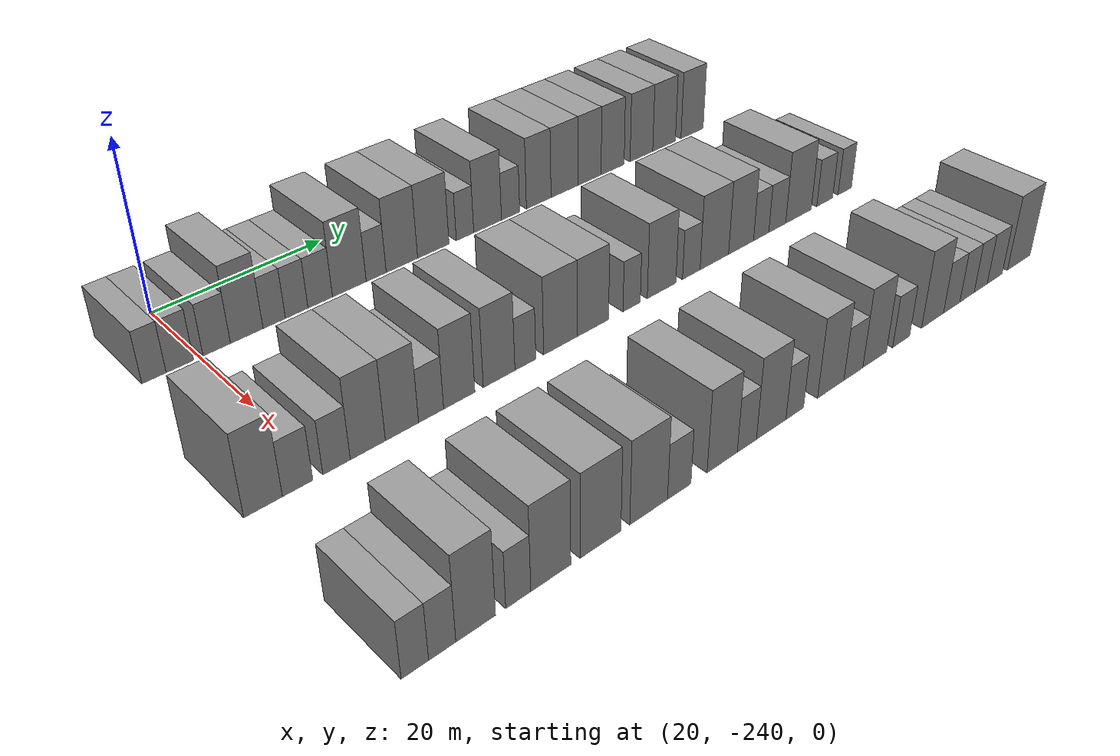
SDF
<sdf version="1.6">
 <world name="default">
  <model name="building_1">
   <static>1</static>
   <pose>25.0000 -244.7638 0 0.000000 0.000000 0.000000</pose>
   <link name="link">
    <pose>0 0 3.00 0 0 0</pose>
    <collision name="collision"><geometry><box><size>10.0000 2.4723 6.0000</size></box></geometry></collision>
    <visual name="visual">
     <cast_shadows>0</cast_shadows>
     <geometry><box><size>10.0000 2.4723 6.0000</size></box></geometry>
     <material>
      <script>
       <uri>model://grey_wall/materials/scripts</uri>
       <uri>model://grey_wall/materials/textures</uri>
       <name>vrc/grey_wall</name>
      </script>
     </material>
    </visual>
   </link>
  </model>
  <model name="building_2">
   <static>1</static>
   <pose>25.0000 -242.0976 0 0.000000 0.000000 0.000000</pose>
   <link name="link">
    <pose>0 0 3.00 0 0 0</pose>
    <collision name="collision"><geometry><box><size>10.0000 2.8600 6.0000</size></box></geometry></collision>
    <visual name="visual">
     <cast_shadows>0</cast_shadows>
     <geometry><box><size>10.0000 2.8600 6.0000</size></box></geometry>
     <material>
      <script>
       <uri>model://grey_wall/materials/scripts</uri>
       <uri>model://grey_wall/materials/textures</uri>
       <name>vrc/grey_wall</name>
      </script>
     </material>
    </visual>
   </link>
  </model>
  <model name="building_3">
   <static>1</static>
   <pose>25.0000 -238.1862 0 0.000000 0.000000 0.000000</pose>
   <link name="link">
    <pose>0 0 3.00 0 0 0</pose>
    <collision name="collision"><geometry><box><size>10.0000 2.9628 6.0000</size></box></geometry></collision>
    <visual name="visual">
     <cast_shadows>0</cast_shadows>
     <geometry><box><size>10.0000 2.9628 6.0000</size></box></geometry>
     <material>
      <script>
       <uri>model://grey_wall/materials/scripts</uri>
       <uri>model://grey_wall/materials/textures</uri>
       <name>vrc/grey_wall</name>
      </script>
     </material>
    </visual>
   </link>
  </model>
  <model name="building_4">
   <static>1</static>
   <pose>25.0000 -234.8908 0 0.000000 0.000000 0.000000</pose>
   <link name="link">
    <pose>0 0 4.50 0 0 0</pose>
    <collision name="collision"><geometry><box><size>10.0000 3.6281 9.0000</size></box></geometry></collision>
    <visual name="visual">
     <cast_shadows>0</cast_shadows>
     <geometry><box><size>10.0000 3.6281 9.0000</size></box></geometry>
     <material>
      <script>
       <uri>model://grey_wall/materials/scripts</uri>
       <uri>model://grey_wall/materials/textures</uri>
       <name>vrc/grey_wall</name>
      </script>
     </material>
    </visual>
   </link>
  </model>
  <model name="building_5">
   <static>1</static>
   <pose>25.0000 -231.7991 0 0.000000 0.000000 0.000000</pose>
   <link name="link">
    <pose>0 0 3.00 0 0 0</pose>
    <collision name="collision"><geometry><box><size>10.0000 2.5554 6.0000</size></box></geometry></collision>
    <visual name="visual">
     <cast_shadows>0</cast_shadows>
     <geometry><box><size>10.0000 2.5554 6.0000</size></box></geometry>
     <material>
      <script>
       <uri>model://grey_wall/materials/scripts</uri>
       <uri>model://grey_wall/materials/textures</uri>
       <name>vrc/grey_wall</name>
      </script>
     </material>
    </visual>
   </link>
  </model>
  <model name="building_6">
   <static>1</static>
   <pose>25.0000 -229.2034 0 0.000000 0.000000 0.000000</pose>
   <link name="link">
    <pose>0 0 3.00 0 0 0</pose>
    <collision name="collision"><geometry><box><size>10.0000 2.6359 6.0000</size></box></geometry></collision>
    <visual name="visual">
     <cast_shadows>0</cast_shadows>
     <geometry><box><size>10.0000 2.6359 6.0000</size></box></geometry>
     <material>
      <script>
       <uri>model://grey_wall/materials/scripts</uri>
       <uri>model://grey_wall/materials/textures</uri>
       <name>vrc/grey_wall</name>
      </script>
     </material>
    </visual>
   </link>
  </model>
  <model name="building_7">
   <static>1</static>
   <pose>25.0000 -226.4187 0 0.000000 0.000000 0.000000</pose>
   <link name="link">
    <pose>0 0 3.00 0 0 0</pose>
    <collision name="collision"><geometry><box><size>10.0000 2.9334 6.0000</size></box></geometry></collision>
    <visual name="visual">
     <cast_shadows>0</cast_shadows>
     <geometry><box><size>10.0000 2.9334 6.0000</size></box></geometry>
     <material>
      <script>
       <uri>model://grey_wall/materials/scripts</uri>
       <uri>model://grey_wall/materials/textures</uri>
       <name>vrc/grey_wall</name>
      </script>
     </material>
    </visual>
   </link>
  </model>
  <model name="building_8">
   <static>1</static>
   <pose>25.0000 -222.8721 0 0.000000 0.000000 0.000000</pose>
   <link name="link">
    <pose>0 0 4.50 0 0 0</pose>
    <collision name="collision"><geometry><box><size>10.0000 4.1597 9.0000</size></box></geometry></collision>
    <visual name="visual">
     <cast_shadows>0</cast_shadows>
     <geometry><box><size>10.0000 4.1597 9.0000</size></box></geometry>
     <material>
      <script>
       <uri>model://grey_wall/materials/scripts</uri>
       <uri>model://grey_wall/materials/textures</uri>
       <name>vrc/grey_wall</name>
      </script>
     </material>
    </visual>
   </link>
  </model>
  <model name="building_9">
   <static>1</static>
   <pose>25.0000 -219.5267 0 0.000000 0.000000 0.000000</pose>
   <link name="link">
    <pose>0 0 3.00 0 0 0</pose>
    <collision name="collision"><geometry><box><size>10.0000 2.5312 6.0000</size></box></geometry></collision>
    <visual name="visual">
     <cast_shadows>0</cast_shadows>
     <geometry><box><size>10.0000 2.5312 6.0000</size></box></geometry>
     <material>
      <script>
       <uri>model://grey_wall/materials/scripts</uri>
       <uri>model://grey_wall/materials/textures</uri>
       <name>vrc/grey_wall</name>
      </script>
     </material>
    </visual>
   </link>
  </model>
  <model name="building_10">
   <static>1</static>
   <pose>25.0000 -216.2148 0 0.000000 0.000000 0.000000</pose>
   <link name="link">
    <pose>0 0 4.50 0 0 0</pose>
    <collision name="collision"><geometry><box><size>10.0000 4.0925 9.0000</size></box></geometry></collision>
    <visual name="visual">
     <cast_shadows>0</cast_shadows>
     <geometry><box><size>10.0000 4.0925 9.0000</size></box></geometry>
     <material>
      <script>
       <uri>model://grey_wall/materials/scripts</uri>
       <uri>model://grey_wall/materials/textures</uri>
       <name>vrc/grey_wall</name>
      </script>
     </material>
    </visual>
   </link>
  </model>
  <model name="building_11">
   <static>1</static>
   <pose>25.0000 -212.0527 0 0.000000 0.000000 0.000000</pose>
   <link name="link">
    <pose>0 0 4.50 0 0 0</pose>
    <collision name="collision"><geometry><box><size>10.0000 4.2318 9.0000</size></box></geometry></collision>
    <visual name="visual">
     <cast_shadows>0</cast_shadows>
     <geometry><box><size>10.0000 4.2318 9.0000</size></box></geometry>
     <material>
      <script>
       <uri>model://grey_wall/materials/scripts</uri>
       <uri>model://grey_wall/materials/textures</uri>
       <name>vrc/grey_wall</name>
      </script>
     </material>
    </visual>
   </link>
  </model>
  <model name="building_12">
   <static>1</static>
   <pose>25.0000 -207.7219 0 0.000000 0.000000 0.000000</pose>
   <link name="link">
    <pose>0 0 3.00 0 0 0</pose>
    <collision name="collision"><geometry><box><size>10.0000 2.4299 6.0000</size></box></geometry></collision>
    <visual name="visual">
     <cast_shadows>0</cast_shadows>
     <geometry><box><size>10.0000 2.4299 6.0000</size></box></geometry>
     <material>
      <script>
       <uri>model://grey_wall/materials/scripts</uri>
       <uri>model://grey_wall/materials/textures</uri>
       <name>vrc/grey_wall</name>
      </script>
     </material>
    </visual>
   </link>
  </model>
  <model name="building_13">
   <static>1</static>
   <pose>25.0000 -204.5237 0 0.000000 0.000000 0.000000</pose>
   <link name="link">
    <pose>0 0 4.50 0 0 0</pose>
    <collision name="collision"><geometry><box><size>10.0000 3.9663 9.0000</size></box></geometry></collision>
    <visual name="visual">
     <cast_shadows>0</cast_shadows>
     <geometry><box><size>10.0000 3.9663 9.0000</size></box></geometry>
     <material>
      <script>
       <uri>model://grey_wall/materials/scripts</uri>
       <uri>model://grey_wall/materials/textures</uri>
       <name>vrc/grey_wall</name>
      </script>
     </material>
    </visual>
   </link>
  </model>
  <model name="building_14">
   <static>1</static>
   <pose>25.0000 -201.2033 0 0.000000 0.000000 0.000000</pose>
   <link name="link">
    <pose>0 0 3.00 0 0 0</pose>
    <collision name="collision"><geometry><box><size>10.0000 2.6745 6.0000</size></box></geometry></collision>
    <visual name="visual">
     <cast_shadows>0</cast_shadows>
     <geometry><box><size>10.0000 2.6745 6.0000</size></box></geometry>
     <material>
      <script>
       <uri>model://grey_wall/materials/scripts</uri>
       <uri>model://grey_wall/materials/textures</uri>
       <name>vrc/grey_wall</name>
      </script>
     </material>
    </visual>
   </link>
  </model>
  <model name="building_15">
   <static>1</static>
   <pose>25.0000 -197.0000 0 0.000000 0.000000 0.000000</pose>
   <link name="link">
    <pose>0 0 4.50 0 0 0</pose>
    <collision name="collision"><geometry><box><size>10.0000 3.7322 9.0000</size></box></geometry></collision>
    <visual name="visual">
     <cast_shadows>0</cast_shadows>
     <geometry><box><size>10.0000 3.7322 9.0000</size></box></geometry>
     <material>
      <script>
       <uri>model://grey_wall/materials/scripts</uri>
       <uri>model://grey_wall/materials/textures</uri>
       <name>vrc/grey_wall</name>
      </script>
     </material>
    </visual>
   </link>
  </model>
  <model name="building_16">
   <static>1</static>
   <pose>25.0000 -193.0202 0 0.000000 0.000000 0.000000</pose>
   <link name="link">
    <pose>0 0 4.50 0 0 0</pose>
    <collision name="collision"><geometry><box><size>10.0000 4.2274 9.0000</size></box></geometry></collision>
    <visual name="visual">
     <cast_shadows>0</cast_shadows>
     <geometry><box><size>10.0000 4.2274 9.0000</size></box></geometry>
     <material>
      <script>
       <uri>model://grey_wall/materials/scripts</uri>
       <uri>model://grey_wall/materials/textures</uri>
       <name>vrc/grey_wall</name>
      </script>
     </material>
    </visual>
   </link>
  </model>
  <model name="building_17">
   <static>1</static>
   <pose>25.0000 -189.0595 0 0.000000 0.000000 0.000000</pose>
   <link name="link">
    <pose>0 0 4.50 0 0 0</pose>
    <collision name="collision"><geometry><box><size>10.0000 3.6940 9.0000</size></box></geometry></collision>
    <visual name="visual">
     <cast_shadows>0</cast_shadows>
     <geometry><box><size>10.0000 3.6940 9.0000</size></box></geometry>
     <material>
      <script>
       <uri>model://grey_wall/materials/scripts</uri>
       <uri>model://grey_wall/materials/textures</uri>
       <name>vrc/grey_wall</name>
      </script>
     </material>
    </visual>
   </link>
  </model>
  <model name="building_18">
   <static>1</static>
   <pose>25.0000 -185.3140 0 0.000000 0.000000 0.000000</pose>
   <link name="link">
    <pose>0 0 4.50 0 0 0</pose>
    <collision name="collision"><geometry><box><size>10.0000 3.7971 9.0000</size></box></geometry></collision>
    <visual name="visual">
     <cast_shadows>0</cast_shadows>
     <geometry><box><size>10.0000 3.7971 9.0000</size></box></geometry>
     <material>
      <script>
       <uri>model://grey_wall/materials/scripts</uri>
       <uri>model://grey_wall/materials/textures</uri>
       <name>vrc/grey_wall</name>
      </script>
     </material>
    </visual>
   </link>
  </model>
  <model name="building_19">
   <static>1</static>
   <pose>25.0000 -180.4824 0 0.000000 0.000000 0.000000</pose>
   <link name="link">
    <pose>0 0 4.50 0 0 0</pose>
    <collision name="collision"><geometry><box><size>10.0000 3.8661 9.0000</size></box></geometry></collision>
    <visual name="visual">
     <cast_shadows>0</cast_shadows>
     <geometry><box><size>10.0000 3.8661 9.0000</size></box></geometry>
     <material>
      <script>
       <uri>model://grey_wall/materials/scripts</uri>
       <uri>model://grey_wall/materials/textures</uri>
       <name>vrc/grey_wall</name>
      </script>
     </material>
    </visual>
   </link>
  </model>
  <model name="building_20">
   <static>1</static>
   <pose>25.0000 -176.5590 0 0.000000 0.000000 0.000000</pose>
   <link name="link">
    <pose>0 0 4.50 0 0 0</pose>
    <collision name="collision"><geometry><box><size>10.0000 3.9805 9.0000</size></box></geometry></collision>
    <visual name="visual">
     <cast_shadows>0</cast_shadows>
     <geometry><box><size>10.0000 3.9805 9.0000</size></box></geometry>
     <material>
      <script>
       <uri>model://grey_wall/materials/scripts</uri>
       <uri>model://grey_wall/materials/textures</uri>
       <name>vrc/grey_wall</name>
      </script>
     </material>
    </visual>
   </link>
  </model>
  <model name="building_21">
   <static>1</static>
   <pose>25.0000 -171.5504 0 0.000000 0.000000 0.000000</pose>
   <link name="link">
    <pose>0 0 4.50 0 0 0</pose>
    <collision name="collision"><geometry><box><size>10.0000 4.0368 9.0000</size></box></geometry></collision>
    <visual name="visual">
     <cast_shadows>0</cast_shadows>
     <geometry><box><size>10.0000 4.0368 9.0000</size></box></geometry>
     <material>
      <script>
       <uri>model://grey_wall/materials/scripts</uri>
       <uri>model://grey_wall/materials/textures</uri>
       <name>vrc/grey_wall</name>
      </script>
     </material>
    </visual>
   </link>
  </model>
  <model name="building_122">
   <static>1</static>
   <pose>47.0000 -246.1658 0 0.000000 0.000000 0.000000</pose>
   <link name="link">
    <pose>0 0 4.50 0 0 0</pose>
    <collision name="collision"><geometry><box><size>10.0000 3.6684 9.0000</size></box></geometry></collision>
    <visual name="visual">
     <cast_shadows>0</cast_shadows>
     <geometry><box><size>10.0000 3.6684 9.0000</size></box></geometry>
     <material>
      <script>
       <uri>model://grey_wall/materials/scripts</uri>
       <uri>model://grey_wall/materials/textures</uri>
       <name>vrc/grey_wall</name>
      </script>
     </material>
    </visual>
   </link>
  </model>
  <model name="building_123">
   <static>1</static>
   <pose>47.0000 -242.8408 0 0.000000 0.000000 0.000000</pose>
   <link name="link">
    <pose>0 0 3.00 0 0 0</pose>
    <collision name="collision"><geometry><box><size>10.0000 2.9815 6.0000</size></box></geometry></collision>
    <visual name="visual">
     <cast_shadows>0</cast_shadows>
     <geometry><box><size>10.0000 2.9815 6.0000</size></box></geometry>
     <material>
      <script>
       <uri>model://grey_wall/materials/scripts</uri>
       <uri>model://grey_wall/materials/textures</uri>
       <name>vrc/grey_wall</name>
      </script>
     </material>
    </visual>
   </link>
  </model>
  <model name="building_124">
   <static>1</static>
   <pose>47.0000 -238.9527 0 0.000000 0.000000 0.000000</pose>
   <link name="link">
    <pose>0 0 3.00 0 0 0</pose>
    <collision name="collision"><geometry><box><size>10.0000 2.7948 6.0000</size></box></geometry></collision>
    <visual name="visual">
     <cast_shadows>0</cast_shadows>
     <geometry><box><size>10.0000 2.7948 6.0000</size></box></geometry>
     <material>
      <script>
       <uri>model://grey_wall/materials/scripts</uri>
       <uri>model://grey_wall/materials/textures</uri>
       <name>vrc/grey_wall</name>
      </script>
     </material>
    </visual>
   </link>
  </model>
  <model name="building_125">
   <static>1</static>
   <pose>47.0000 -235.7075 0 0.000000 0.000000 0.000000</pose>
   <link name="link">
    <pose>0 0 4.50 0 0 0</pose>
    <collision name="collision"><geometry><box><size>10.0000 3.6955 9.0000</size></box></geometry></collision>
    <visual name="visual">
     <cast_shadows>0</cast_shadows>
     <geometry><box><size>10.0000 3.6955 9.0000</size></box></geometry>
     <material>
      <script>
       <uri>model://grey_wall/materials/scripts</uri>
       <uri>model://grey_wall/materials/textures</uri>
       <name>vrc/grey_wall</name>
      </script>
     </material>
    </visual>
   </link>
  </model>
  <model name="building_126">
   <static>1</static>
   <pose>47.0000 -232.0515 0 0.000000 0.000000 0.000000</pose>
   <link name="link">
    <pose>0 0 4.50 0 0 0</pose>
    <collision name="collision"><geometry><box><size>10.0000 3.6165 9.0000</size></box></geometry></collision>
    <visual name="visual">
     <cast_shadows>0</cast_shadows>
     <geometry><box><size>10.0000 3.6165 9.0000</size></box></geometry>
     <material>
      <script>
       <uri>model://grey_wall/materials/scripts</uri>
       <uri>model://grey_wall/materials/textures</uri>
       <name>vrc/grey_wall</name>
      </script>
     </material>
    </visual>
   </link>
  </model>
  <model name="building_127">
   <static>1</static>
   <pose>47.0000 -228.8331 0 0.000000 0.000000 0.000000</pose>
   <link name="link">
    <pose>0 0 3.00 0 0 0</pose>
    <collision name="collision"><geometry><box><size>10.0000 2.8204 6.0000</size></box></geometry></collision>
    <visual name="visual">
     <cast_shadows>0</cast_shadows>
     <geometry><box><size>10.0000 2.8204 6.0000</size></box></geometry>
     <material>
      <script>
       <uri>model://grey_wall/materials/scripts</uri>
       <uri>model://grey_wall/materials/textures</uri>
       <name>vrc/grey_wall</name>
      </script>
     </material>
    </visual>
   </link>
  </model>
  <model name="building_128">
   <static>1</static>
   <pose>47.0000 -225.6115 0 0.000000 0.000000 0.000000</pose>
   <link name="link">
    <pose>0 0 4.50 0 0 0</pose>
    <collision name="collision"><geometry><box><size>10.0000 3.6228 9.0000</size></box></geometry></collision>
    <visual name="visual">
     <cast_shadows>0</cast_shadows>
     <geometry><box><size>10.0000 3.6228 9.0000</size></box></geometry>
     <material>
      <script>
       <uri>model://grey_wall/materials/scripts</uri>
       <uri>model://grey_wall/materials/textures</uri>
       <name>vrc/grey_wall</name>
      </script>
     </material>
    </visual>
   </link>
  </model>
  <model name="building_129">
   <static>1</static>
   <pose>47.0000 -220.8839 0 0.000000 0.000000 0.000000</pose>
   <link name="link">
    <pose>0 0 4.50 0 0 0</pose>
    <collision name="collision"><geometry><box><size>10.0000 3.8322 9.0000</size></box></geometry></collision>
    <visual name="visual">
     <cast_shadows>0</cast_shadows>
     <geometry><box><size>10.0000 3.8322 9.0000</size></box></geometry>
     <material>
      <script>
       <uri>model://grey_wall/materials/scripts</uri>
       <uri>model://grey_wall/materials/textures</uri>
       <name>vrc/grey_wall</name>
      </script>
     </material>
    </visual>
   </link>
  </model>
  <model name="building_130">
   <static>1</static>
   <pose>47.0000 -217.6658 0 0.000000 0.000000 0.000000</pose>
   <link name="link">
    <pose>0 0 3.00 0 0 0</pose>
    <collision name="collision"><geometry><box><size>10.0000 2.6041 6.0000</size></box></geometry></collision>
    <visual name="visual">
     <cast_shadows>0</cast_shadows>
     <geometry><box><size>10.0000 2.6041 6.0000</size></box></geometry>
     <material>
      <script>
       <uri>model://grey_wall/materials/scripts</uri>
       <uri>model://grey_wall/materials/textures</uri>
       <name>vrc/grey_wall</name>
      </script>
     </material>
    </visual>
   </link>
  </model>
  <model name="building_131">
   <static>1</static>
   <pose>47.0000 -213.1746 0 0.000000 0.000000 0.000000</pose>
   <link name="link">
    <pose>0 0 4.50 0 0 0</pose>
    <collision name="collision"><geometry><box><size>10.0000 4.3783 9.0000</size></box></geometry></collision>
    <visual name="visual">
     <cast_shadows>0</cast_shadows>
     <geometry><box><size>10.0000 4.3783 9.0000</size></box></geometry>
     <material>
      <script>
       <uri>model://grey_wall/materials/scripts</uri>
       <uri>model://grey_wall/materials/textures</uri>
       <name>vrc/grey_wall</name>
      </script>
     </material>
    </visual>
   </link>
  </model>
  <model name="building_132">
   <static>1</static>
   <pose>47.0000 -208.8699 0 0.000000 0.000000 0.000000</pose>
   <link name="link">
    <pose>0 0 4.50 0 0 0</pose>
    <collision name="collision"><geometry><box><size>10.0000 4.2310 9.0000</size></box></geometry></collision>
    <visual name="visual">
     <cast_shadows>0</cast_shadows>
     <geometry><box><size>10.0000 4.2310 9.0000</size></box></geometry>
     <material>
      <script>
       <uri>model://grey_wall/materials/scripts</uri>
       <uri>model://grey_wall/materials/textures</uri>
       <name>vrc/grey_wall</name>
      </script>
     </material>
    </visual>
   </link>
  </model>
  <model name="building_133">
   <static>1</static>
   <pose>47.0000 -203.5389 0 0.000000 0.000000 0.000000</pose>
   <link name="link">
    <pose>0 0 3.00 0 0 0</pose>
    <collision name="collision"><geometry><box><size>10.0000 2.4310 6.0000</size></box></geometry></collision>
    <visual name="visual">
     <cast_shadows>0</cast_shadows>
     <geometry><box><size>10.0000 2.4310 6.0000</size></box></geometry>
     <material>
      <script>
       <uri>model://grey_wall/materials/scripts</uri>
       <uri>model://grey_wall/materials/textures</uri>
       <name>vrc/grey_wall</name>
      </script>
     </material>
    </visual>
   </link>
  </model>
  <model name="building_134">
   <static>1</static>
   <pose>47.0000 -199.2252 0 0.000000 0.000000 0.000000</pose>
   <link name="link">
    <pose>0 0 4.50 0 0 0</pose>
    <collision name="collision"><geometry><box><size>10.0000 4.1964 9.0000</size></box></geometry></collision>
    <visual name="visual">
     <cast_shadows>0</cast_shadows>
     <geometry><box><size>10.0000 4.1964 9.0000</size></box></geometry>
     <material>
      <script>
       <uri>model://grey_wall/materials/scripts</uri>
       <uri>model://grey_wall/materials/textures</uri>
       <name>vrc/grey_wall</name>
      </script>
     </material>
    </visual>
   </link>
  </model>
  <model name="building_135">
   <static>1</static>
   <pose>47.0000 -194.7926 0 0.000000 0.000000 0.000000</pose>
   <link name="link">
    <pose>0 0 3.00 0 0 0</pose>
    <collision name="collision"><geometry><box><size>10.0000 2.6689 6.0000</size></box></geometry></collision>
    <visual name="visual">
     <cast_shadows>0</cast_shadows>
     <geometry><box><size>10.0000 2.6689 6.0000</size></box></geometry>
     <material>
      <script>
       <uri>model://grey_wall/materials/scripts</uri>
       <uri>model://grey_wall/materials/textures</uri>
       <name>vrc/grey_wall</name>
      </script>
     </material>
    </visual>
   </link>
  </model>
  <model name="building_136">
   <static>1</static>
   <pose>47.0000 -191.2210 0 0.000000 0.000000 0.000000</pose>
   <link name="link">
    <pose>0 0 4.50 0 0 0</pose>
    <collision name="collision"><geometry><box><size>10.0000 4.4743 9.0000</size></box></geometry></collision>
    <visual name="visual">
     <cast_shadows>0</cast_shadows>
     <geometry><box><size>10.0000 4.4743 9.0000</size></box></geometry>
     <material>
      <script>
       <uri>model://grey_wall/materials/scripts</uri>
       <uri>model://grey_wall/materials/textures</uri>
       <name>vrc/grey_wall</name>
      </script>
     </material>
    </visual>
   </link>
  </model>
  <model name="building_137">
   <static>1</static>
   <pose>47.0000 -186.9594 0 0.000000 0.000000 0.000000</pose>
   <link name="link">
    <pose>0 0 4.50 0 0 0</pose>
    <collision name="collision"><geometry><box><size>10.0000 4.0490 9.0000</size></box></geometry></collision>
    <visual name="visual">
     <cast_shadows>0</cast_shadows>
     <geometry><box><size>10.0000 4.0490 9.0000</size></box></geometry>
     <material>
      <script>
       <uri>model://grey_wall/materials/scripts</uri>
       <uri>model://grey_wall/materials/textures</uri>
       <name>vrc/grey_wall</name>
      </script>
     </material>
    </visual>
   </link>
  </model>
  <model name="building_138">
   <static>1</static>
   <pose>47.0000 -183.6641 0 0.000000 0.000000 0.000000</pose>
   <link name="link">
    <pose>0 0 3.00 0 0 0</pose>
    <collision name="collision"><geometry><box><size>10.0000 2.5416 6.0000</size></box></geometry></collision>
    <visual name="visual">
     <cast_shadows>0</cast_shadows>
     <geometry><box><size>10.0000 2.5416 6.0000</size></box></geometry>
     <material>
      <script>
       <uri>model://grey_wall/materials/scripts</uri>
       <uri>model://grey_wall/materials/textures</uri>
       <name>vrc/grey_wall</name>
      </script>
     </material>
    </visual>
   </link>
  </model>
  <model name="building_139">
   <static>1</static>
   <pose>47.0000 -180.9590 0 0.000000 0.000000 0.000000</pose>
   <link name="link">
    <pose>0 0 3.00 0 0 0</pose>
    <collision name="collision"><geometry><box><size>10.0000 2.8685 6.0000</size></box></geometry></collision>
    <visual name="visual">
     <cast_shadows>0</cast_shadows>
     <geometry><box><size>10.0000 2.8685 6.0000</size></box></geometry>
     <material>
      <script>
       <uri>model://grey_wall/materials/scripts</uri>
       <uri>model://grey_wall/materials/textures</uri>
       <name>vrc/grey_wall</name>
      </script>
     </material>
    </visual>
   </link>
  </model>
  <model name="building_140">
   <static>1</static>
   <pose>47.0000 -177.2851 0 0.000000 0.000000 0.000000</pose>
   <link name="link">
    <pose>0 0 4.50 0 0 0</pose>
    <collision name="collision"><geometry><box><size>10.0000 4.4792 9.0000</size></box></geometry></collision>
    <visual name="visual">
     <cast_shadows>0</cast_shadows>
     <geometry><box><size>10.0000 4.4792 9.0000</size></box></geometry>
     <material>
      <script>
       <uri>model://grey_wall/materials/scripts</uri>
       <uri>model://grey_wall/materials/textures</uri>
       <name>vrc/grey_wall</name>
      </script>
     </material>
    </visual>
   </link>
  </model>
  <model name="building_141">
   <static>1</static>
   <pose>47.0000 -172.6089 0 0.000000 0.000000 0.000000</pose>
   <link name="link">
    <pose>0 0 3.00 0 0 0</pose>
    <collision name="collision"><geometry><box><size>10.0000 2.8732 6.0000</size></box></geometry></collision>
    <visual name="visual">
     <cast_shadows>0</cast_shadows>
     <geometry><box><size>10.0000 2.8732 6.0000</size></box></geometry>
     <material>
      <script>
       <uri>model://grey_wall/materials/scripts</uri>
       <uri>model://grey_wall/materials/textures</uri>
       <name>vrc/grey_wall</name>
      </script>
     </material>
    </visual>
   </link>
  </model>
  <model name="building_142">
   <static>1</static>
   <pose>47.0000 -168.9298 0 0.000000 0.000000 0.000000</pose>
   <link name="link">
    <pose>0 0 3.00 0 0 0</pose>
    <collision name="collision"><geometry><box><size>10.0000 2.4850 6.0000</size></box></geometry></collision>
    <visual name="visual">
     <cast_shadows>0</cast_shadows>
     <geometry><box><size>10.0000 2.4850 6.0000</size></box></geometry>
     <material>
      <script>
       <uri>model://grey_wall/materials/scripts</uri>
       <uri>model://grey_wall/materials/textures</uri>
       <name>vrc/grey_wall</name>
      </script>
     </material>
    </visual>
   </link>
  </model>
  <model name="building_257">
   <static>1</static>
   <pose>69.0000 -246.7720 0 0.000000 0.000000 0.000000</pose>
   <link name="link">
    <pose>0 0 3.00 0 0 0</pose>
    <collision name="collision"><geometry><box><size>10.0000 2.4560 6.0000</size></box></geometry></collision>
    <visual name="visual">
     <cast_shadows>0</cast_shadows>
     <geometry><box><size>10.0000 2.4560 6.0000</size></box></geometry>
     <material>
      <script>
       <uri>model://grey_wall/materials/scripts</uri>
       <uri>model://grey_wall/materials/textures</uri>
       <name>vrc/grey_wall</name>
      </script>
     </material>
    </visual>
   </link>
  </model>
  <model name="building_258">
   <static>1</static>
   <pose>69.0000 -244.2950 0 0.000000 0.000000 0.000000</pose>
   <link name="link">
    <pose>0 0 3.00 0 0 0</pose>
    <collision name="collision"><geometry><box><size>10.0000 2.4979 6.0000</size></box></geometry></collision>
    <visual name="visual">
     <cast_shadows>0</cast_shadows>
     <geometry><box><size>10.0000 2.4979 6.0000</size></box></geometry>
     <material>
      <script>
       <uri>model://grey_wall/materials/scripts</uri>
       <uri>model://grey_wall/materials/textures</uri>
       <name>vrc/grey_wall</name>
      </script>
     </material>
    </visual>
   </link>
  </model>
  <model name="building_259">
   <static>1</static>
   <pose>69.0000 -241.1610 0 0.000000 0.000000 0.000000</pose>
   <link name="link">
    <pose>0 0 4.50 0 0 0</pose>
    <collision name="collision"><geometry><box><size>10.0000 3.7703 9.0000</size></box></geometry></collision>
    <visual name="visual">
     <cast_shadows>0</cast_shadows>
     <geometry><box><size>10.0000 3.7703 9.0000</size></box></geometry>
     <material>
      <script>
       <uri>model://grey_wall/materials/scripts</uri>
       <uri>model://grey_wall/materials/textures</uri>
       <name>vrc/grey_wall</name>
      </script>
     </material>
    </visual>
   </link>
  </model>
  <model name="building_260">
   <static>1</static>
   <pose>69.0000 -237.0235 0 0.000000 0.000000 0.000000</pose>
   <link name="link">
    <pose>0 0 3.00 0 0 0</pose>
    <collision name="collision"><geometry><box><size>10.0000 2.5047 6.0000</size></box></geometry></collision>
    <visual name="visual">
     <cast_shadows>0</cast_shadows>
     <geometry><box><size>10.0000 2.5047 6.0000</size></box></geometry>
     <material>
      <script>
       <uri>model://grey_wall/materials/scripts</uri>
       <uri>model://grey_wall/materials/textures</uri>
       <name>vrc/grey_wall</name>
      </script>
     </material>
    </visual>
   </link>
  </model>
  <model name="building_261">
   <static>1</static>
   <pose>69.0000 -233.7022 0 0.000000 0.000000 0.000000</pose>
   <link name="link">
    <pose>0 0 4.50 0 0 0</pose>
    <collision name="collision"><geometry><box><size>10.0000 4.1379 9.0000</size></box></geometry></collision>
    <visual name="visual">
     <cast_shadows>0</cast_shadows>
     <geometry><box><size>10.0000 4.1379 9.0000</size></box></geometry>
     <material>
      <script>
       <uri>model://grey_wall/materials/scripts</uri>
       <uri>model://grey_wall/materials/textures</uri>
       <name>vrc/grey_wall</name>
      </script>
     </material>
    </visual>
   </link>
  </model>
  <model name="building_262">
   <static>1</static>
   <pose>69.0000 -228.3951 0 0.000000 0.000000 0.000000</pose>
   <link name="link">
    <pose>0 0 4.50 0 0 0</pose>
    <collision name="collision"><geometry><box><size>10.0000 4.4764 9.0000</size></box></geometry></collision>
    <visual name="visual">
     <cast_shadows>0</cast_shadows>
     <geometry><box><size>10.0000 4.4764 9.0000</size></box></geometry>
     <material>
      <script>
       <uri>model://grey_wall/materials/scripts</uri>
       <uri>model://grey_wall/materials/textures</uri>
       <name>vrc/grey_wall</name>
      </script>
     </material>
    </visual>
   </link>
  </model>
  <model name="building_263">
   <static>1</static>
   <pose>69.0000 -222.9633 0 0.000000 0.000000 0.000000</pose>
   <link name="link">
    <pose>0 0 4.50 0 0 0</pose>
    <collision name="collision"><geometry><box><size>10.0000 4.3872 9.0000</size></box></geometry></collision>
    <visual name="visual">
     <cast_shadows>0</cast_shadows>
     <geometry><box><size>10.0000 4.3872 9.0000</size></box></geometry>
     <material>
      <script>
       <uri>model://grey_wall/materials/scripts</uri>
       <uri>model://grey_wall/materials/textures</uri>
       <name>vrc/grey_wall</name>
      </script>
     </material>
    </visual>
   </link>
  </model>
  <model name="building_264">
   <static>1</static>
   <pose>69.0000 -219.3533 0 0.000000 0.000000 0.000000</pose>
   <link name="link">
    <pose>0 0 3.00 0 0 0</pose>
    <collision name="collision"><geometry><box><size>10.0000 2.8327 6.0000</size></box></geometry></collision>
    <visual name="visual">
     <cast_shadows>0</cast_shadows>
     <geometry><box><size>10.0000 2.8327 6.0000</size></box></geometry>
     <material>
      <script>
       <uri>model://grey_wall/materials/scripts</uri>
       <uri>model://grey_wall/materials/textures</uri>
       <name>vrc/grey_wall</name>
      </script>
     </material>
    </visual>
   </link>
  </model>
  <model name="building_265">
   <static>1</static>
   <pose>69.0000 -214.0096 0 0.000000 0.000000 0.000000</pose>
   <link name="link">
    <pose>0 0 4.50 0 0 0</pose>
    <collision name="collision"><geometry><box><size>10.0000 3.8547 9.0000</size></box></geometry></collision>
    <visual name="visual">
     <cast_shadows>0</cast_shadows>
     <geometry><box><size>10.0000 3.8547 9.0000</size></box></geometry>
     <material>
      <script>
       <uri>model://grey_wall/materials/scripts</uri>
       <uri>model://grey_wall/materials/textures</uri>
       <name>vrc/grey_wall</name>
      </script>
     </material>
    </visual>
   </link>
  </model>
  <model name="building_266">
   <static>1</static>
   <pose>69.0000 -210.8207 0 0.000000 0.000000 0.000000</pose>
   <link name="link">
    <pose>0 0 3.00 0 0 0</pose>
    <collision name="collision"><geometry><box><size>10.0000 2.5230 6.0000</size></box></geometry></collision>
    <visual name="visual">
     <cast_shadows>0</cast_shadows>
     <geometry><box><size>10.0000 2.5230 6.0000</size></box></geometry>
     <material>
      <script>
       <uri>model://grey_wall/materials/scripts</uri>
       <uri>model://grey_wall/materials/textures</uri>
       <name>vrc/grey_wall</name>
      </script>
     </material>
    </visual>
   </link>
  </model>
  <model name="building_267">
   <static>1</static>
   <pose>69.0000 -207.5591 0 0.000000 0.000000 0.000000</pose>
   <link name="link">
    <pose>0 0 4.50 0 0 0</pose>
    <collision name="collision"><geometry><box><size>10.0000 4.0003 9.0000</size></box></geometry></collision>
    <visual name="visual">
     <cast_shadows>0</cast_shadows>
     <geometry><box><size>10.0000 4.0003 9.0000</size></box></geometry>
     <material>
      <script>
       <uri>model://grey_wall/materials/scripts</uri>
       <uri>model://grey_wall/materials/textures</uri>
       <name>vrc/grey_wall</name>
      </script>
     </material>
    </visual>
   </link>
  </model>
  <model name="building_268">
   <static>1</static>
   <pose>69.0000 -204.3164 0 0.000000 0.000000 0.000000</pose>
   <link name="link">
    <pose>0 0 3.00 0 0 0</pose>
    <collision name="collision"><geometry><box><size>10.0000 2.4851 6.0000</size></box></geometry></collision>
    <visual name="visual">
     <cast_shadows>0</cast_shadows>
     <geometry><box><size>10.0000 2.4851 6.0000</size></box></geometry>
     <material>
      <script>
       <uri>model://grey_wall/materials/scripts</uri>
       <uri>model://grey_wall/materials/textures</uri>
       <name>vrc/grey_wall</name>
      </script>
     </material>
    </visual>
   </link>
  </model>
  <model name="building_269">
   <static>1</static>
   <pose>69.0000 -199.1310 0 0.000000 0.000000 0.000000</pose>
   <link name="link">
    <pose>0 0 4.50 0 0 0</pose>
    <collision name="collision"><geometry><box><size>10.0000 3.8857 9.0000</size></box></geometry></collision>
    <visual name="visual">
     <cast_shadows>0</cast_shadows>
     <geometry><box><size>10.0000 3.8857 9.0000</size></box></geometry>
     <material>
      <script>
       <uri>model://grey_wall/materials/scripts</uri>
       <uri>model://grey_wall/materials/textures</uri>
       <name>vrc/grey_wall</name>
      </script>
     </material>
    </visual>
   </link>
  </model>
  <model name="building_270">
   <static>1</static>
   <pose>69.0000 -195.7493 0 0.000000 0.000000 0.000000</pose>
   <link name="link">
    <pose>0 0 3.00 0 0 0</pose>
    <collision name="collision"><geometry><box><size>10.0000 2.8776 6.0000</size></box></geometry></collision>
    <visual name="visual">
     <cast_shadows>0</cast_shadows>
     <geometry><box><size>10.0000 2.8776 6.0000</size></box></geometry>
     <material>
      <script>
       <uri>model://grey_wall/materials/scripts</uri>
       <uri>model://grey_wall/materials/textures</uri>
       <name>vrc/grey_wall</name>
      </script>
     </material>
    </visual>
   </link>
  </model>
  <model name="building_271">
   <static>1</static>
   <pose>69.0000 -192.4610 0 0.000000 0.000000 0.000000</pose>
   <link name="link">
    <pose>0 0 4.50 0 0 0</pose>
    <collision name="collision"><geometry><box><size>10.0000 3.6990 9.0000</size></box></geometry></collision>
    <visual name="visual">
     <cast_shadows>0</cast_shadows>
     <geometry><box><size>10.0000 3.6990 9.0000</size></box></geometry>
     <material>
      <script>
       <uri>model://grey_wall/materials/scripts</uri>
       <uri>model://grey_wall/materials/textures</uri>
       <name>vrc/grey_wall</name>
      </script>
     </material>
    </visual>
   </link>
  </model>
  <model name="building_272">
   <static>1</static>
   <pose>69.0000 -188.2346 0 0.000000 0.000000 0.000000</pose>
   <link name="link">
    <pose>0 0 3.00 0 0 0</pose>
    <collision name="collision"><geometry><box><size>10.0000 2.7538 6.0000</size></box></geometry></collision>
    <visual name="visual">
     <cast_shadows>0</cast_shadows>
     <geometry><box><size>10.0000 2.7538 6.0000</size></box></geometry>
     <material>
      <script>
       <uri>model://grey_wall/materials/scripts</uri>
       <uri>model://grey_wall/materials/textures</uri>
       <name>vrc/grey_wall</name>
      </script>
     </material>
    </visual>
   </link>
  </model>
  <model name="building_273">
   <static>1</static>
   <pose>69.0000 -182.9934 0 0.000000 0.000000 0.000000</pose>
   <link name="link">
    <pose>0 0 4.50 0 0 0</pose>
    <collision name="collision"><geometry><box><size>10.0000 3.7287 9.0000</size></box></geometry></collision>
    <visual name="visual">
     <cast_shadows>0</cast_shadows>
     <geometry><box><size>10.0000 3.7287 9.0000</size></box></geometry>
     <material>
      <script>
       <uri>model://grey_wall/materials/scripts</uri>
       <uri>model://grey_wall/materials/textures</uri>
       <name>vrc/grey_wall</name>
      </script>
     </material>
    </visual>
   </link>
  </model>
  <model name="building_274">
   <static>1</static>
   <pose>69.0000 -179.6959 0 0.000000 0.000000 0.000000</pose>
   <link name="link">
    <pose>0 0 3.00 0 0 0</pose>
    <collision name="collision"><geometry><box><size>10.0000 2.8663 6.0000</size></box></geometry></collision>
    <visual name="visual">
     <cast_shadows>0</cast_shadows>
     <geometry><box><size>10.0000 2.8663 6.0000</size></box></geometry>
     <material>
      <script>
       <uri>model://grey_wall/materials/scripts</uri>
       <uri>model://grey_wall/materials/textures</uri>
       <name>vrc/grey_wall</name>
      </script>
     </material>
    </visual>
   </link>
  </model>
  <model name="building_275">
   <static>1</static>
   <pose>69.0000 -176.9837 0 0.000000 0.000000 0.000000</pose>
   <link name="link">
    <pose>0 0 3.00 0 0 0</pose>
    <collision name="collision"><geometry><box><size>10.0000 2.5582 6.0000</size></box></geometry></collision>
    <visual name="visual">
     <cast_shadows>0</cast_shadows>
     <geometry><box><size>10.0000 2.5582 6.0000</size></box></geometry>
     <material>
      <script>
       <uri>model://grey_wall/materials/scripts</uri>
       <uri>model://grey_wall/materials/textures</uri>
       <name>vrc/grey_wall</name>
      </script>
     </material>
    </visual>
   </link>
  </model>
  <model name="building_276">
   <static>1</static>
   <pose>69.0000 -174.5030 0 0.000000 0.000000 0.000000</pose>
   <link name="link">
    <pose>0 0 3.00 0 0 0</pose>
    <collision name="collision"><geometry><box><size>10.0000 2.4030 6.0000</size></box></geometry></collision>
    <visual name="visual">
     <cast_shadows>0</cast_shadows>
     <geometry><box><size>10.0000 2.4030 6.0000</size></box></geometry>
     <material>
      <script>
       <uri>model://grey_wall/materials/scripts</uri>
       <uri>model://grey_wall/materials/textures</uri>
       <name>vrc/grey_wall</name>
      </script>
     </material>
    </visual>
   </link>
  </model>
  <model name="building_277">
   <static>1</static>
   <pose>69.0000 -171.9033 0 0.000000 0.000000 0.000000</pose>
   <link name="link">
    <pose>0 0 3.00 0 0 0</pose>
    <collision name="collision"><geometry><box><size>10.0000 2.7964 6.0000</size></box></geometry></collision>
    <visual name="visual">
     <cast_shadows>0</cast_shadows>
     <geometry><box><size>10.0000 2.7964 6.0000</size></box></geometry>
     <material>
      <script>
       <uri>model://grey_wall/materials/scripts</uri>
       <uri>model://grey_wall/materials/textures</uri>
       <name>vrc/grey_wall</name>
      </script>
     </material>
    </visual>
   </link>
  </model>
  <model name="building_278">
   <static>1</static>
   <pose>69.0000 -167.3055 0 0.000000 0.000000 0.000000</pose>
   <link name="link">
    <pose>0 0 4.50 0 0 0</pose>
    <collision name="collision"><geometry><box><size>10.0000 4.3994 9.0000</size></box></geometry></collision>
    <visual name="visual">
     <cast_shadows>0</cast_shadows>
     <geometry><box><size>10.0000 4.3994 9.0000</size></box></geometry>
     <material>
      <script>
       <uri>model://grey_wall/materials/scripts</uri>
       <uri>model://grey_wall/materials/textures</uri>
       <name>vrc/grey_wall</name>
      </script>
     </material>
    </visual>
   </link>
  </model>
 </world>
</sdf>
